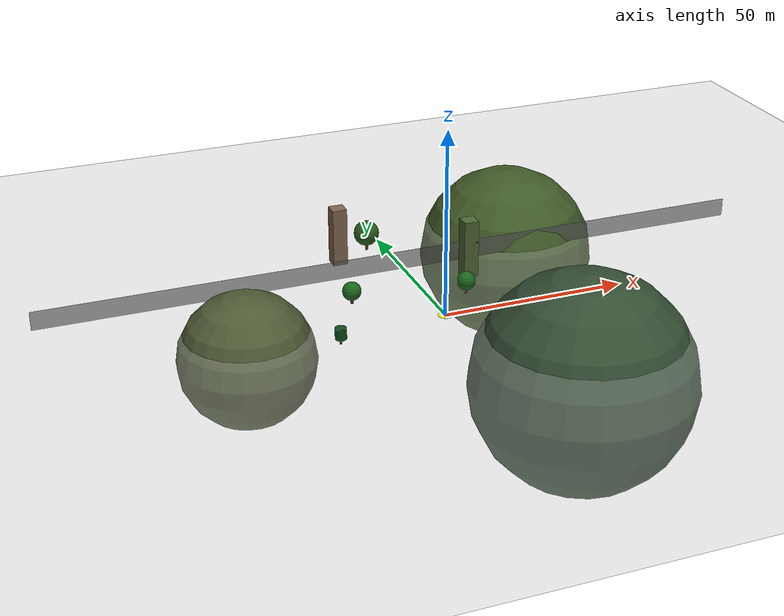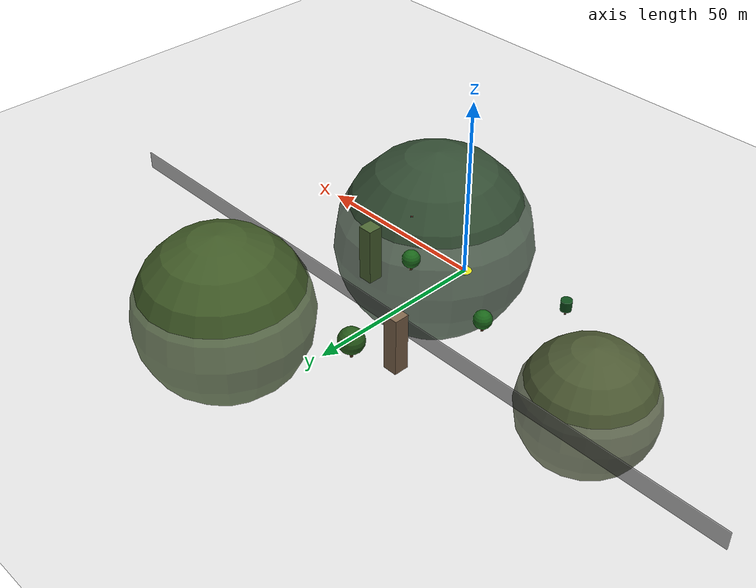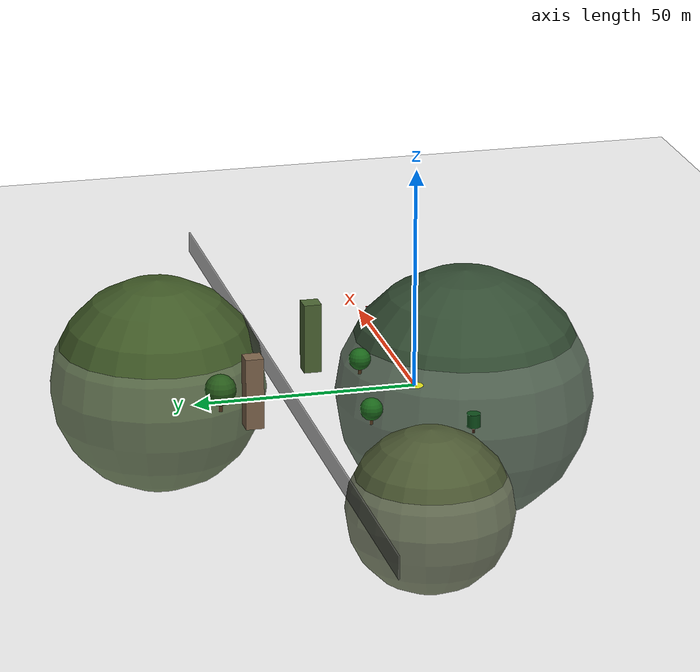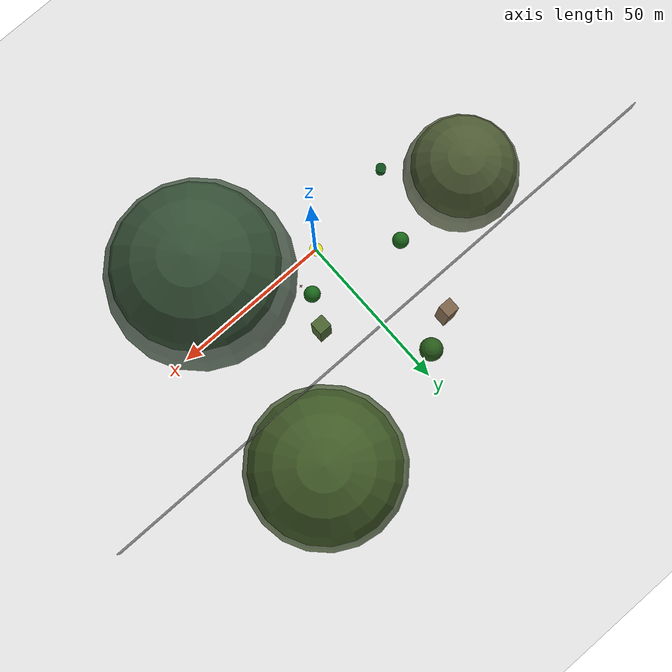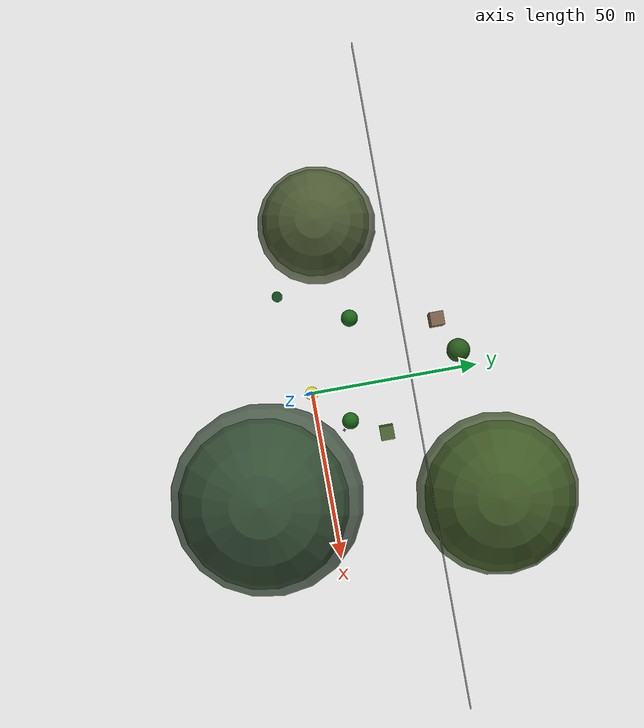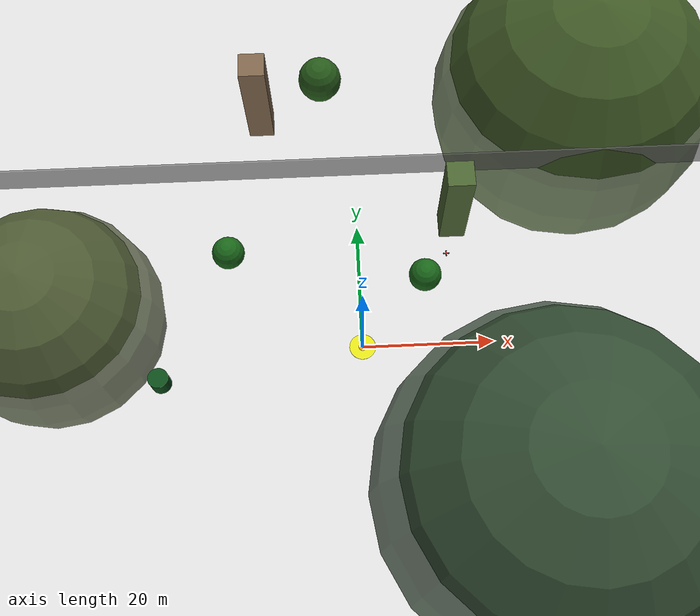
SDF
<sdf version="1.10">
 <world name="px4_drone_world">
  <physics name="1ms" type="ignored">
   <max_step_size>0.001</max_step_size>
   <real_time_factor>1.0</real_time_factor>
  </physics>
  <plugin filename="gz-sim-physics-system" name="gz::sim::systems::Physics"/>
  <plugin filename="gz-sim-user-commands-system" name="gz::sim::systems::UserCommands"/>
  <plugin filename="gz-sim-scene-broadcaster-system" name="gz::sim::systems::SceneBroadcaster"/>
  <plugin filename="gz-sim-imu-system" name="gz::sim::systems::Imu"/>
  <plugin filename="gz-sim-sensors-system" name="gz::sim::systems::Sensors">
   <render_engine>ogre</render_engine>
  </plugin>
  <plugin filename="gz-sim-contact-system" name="gz::sim::systems::Contact"/>
  <atmosphere type="adiabatic"/>
  <magnetic_field>5.5645e-06 2.28758e-05 -4.23884e-05</magnetic_field>
  <light type="directional" name="sun">
   <pose>0 0 10 0 0 0</pose>
   <diffuse>1.0 1.0 1.0 1</diffuse>
   <specular>0.5 0.5 0.5 1</specular>
   <attenuation>
    <range>1000</range>
    <constant>0.9</constant>
    <linear>0.01</linear>
    <quadratic>0.001</quadratic>
   </attenuation>
   <direction>-0.5 0.1 -0.9</direction>
  </light>
  <model name="ground_plane">
   <static>true</static>
   <link name="ground_link">
    <collision name="ground_collision">
     <geometry><plane><normal>0 0 1</normal><size>100 100</size></plane></geometry>
    </collision>
    <visual name="ground_visual">
     <geometry><plane><normal>0 0 1</normal><size>100 100</size></plane></geometry>
     <material><ambient>0.5 0.5 0.5 1</ambient><diffuse>0.7 0.7 0.7 1</diffuse></material>
    </visual>
   </link>
  </model>
  <model name="border_fence">
   <static>true</static>
   <pose>0 30 2.5 0 0 0</pose>
   <link name="link">
    <visual name="fence_vis">
     <geometry><box><size>200 0.3 5</size></box></geometry>
     <material><ambient>0.4 0.4 0.4 0.7</ambient><diffuse>0.4 0.4 0.4 0.7</diffuse></material>
    </visual>
    <collision name="fence_col"><geometry><box><size>200 0.3 5</size></box></geometry></collision>
   </link>
  </model>
  <model name="watchtower_south">
   <static>true</static>
   <pose>15 20 8 0 0 0</pose>
   <link name="link">
    <visual name="vis">
     <geometry><box><size>4 4 16</size></box></geometry>
     <material><ambient>0.3 0.4 0.2 1</ambient><diffuse>0.3 0.4 0.2 1</diffuse></material>
    </visual>
    <collision name="col"><geometry><box><size>4 4 16</size></box></geometry></collision>
   </link>
  </model>
  <model name="watchtower_north">
   <static>true</static>
   <pose>-15 40 8 0 0 0</pose>
   <link name="link">
    <visual name="vis">
     <geometry><box><size>4 4 16</size></box></geometry>
     <material><ambient>0.5 0.4 0.3 1</ambient><diffuse>0.5 0.4 0.3 1</diffuse></material>
    </visual>
    <collision name="col"><geometry><box><size>4 4 16</size></box></geometry></collision>
   </link>
  </model>
  <model name="hill_1">
   <static>true</static>
   <pose>40 50 -10 0 0 0</pose>
   <link name="link">
    <visual name="vis">
     <geometry><sphere><radius>25</radius></sphere></geometry>
     <material><ambient>0.25 0.35 0.15 1</ambient><diffuse>0.25 0.35 0.15 1</diffuse></material>
    </visual>
    <collision name="col"><geometry><sphere><radius>25</radius></sphere></geometry></collision>
   </link>
  </model>
  <model name="hill_2">
   <static>true</static>
   <pose>-50 10 -8 0 0 0</pose>
   <link name="link">
    <visual name="vis">
     <geometry><sphere><radius>18</radius></sphere></geometry>
     <material><ambient>0.3 0.35 0.2 1</ambient><diffuse>0.3 0.35 0.2 1</diffuse></material>
    </visual>
    <collision name="col"><geometry><sphere><radius>18</radius></sphere></geometry></collision>
   </link>
  </model>
  <model name="hill_3">
   <static>true</static>
   <pose>30 -20 -15 0 0 0</pose>
   <link name="link">
    <visual name="vis">
     <geometry><sphere><radius>30</radius></sphere></geometry>
     <material><ambient>0.2 0.3 0.2 1</ambient><diffuse>0.2 0.3 0.2 1</diffuse></material>
    </visual>
    <collision name="col"><geometry><sphere><radius>30</radius></sphere></geometry></collision>
   </link>
  </model>
  <model name="tree_1">
   <static>true</static>
   <pose>10 10 0 0 0 0</pose>
   <link name="trunk">
    <visual name="v">
     <pose>0 0 1 0 0 0</pose>
     <geometry><cylinder><radius>0.4</radius><length>2</length></cylinder></geometry>
     <material><ambient>0.3 0.2 0.1 1</ambient><diffuse>0.3 0.2 0.1 1</diffuse></material>
    </visual>
    <collision name="c">
     <pose>0 0 1 0 0 0</pose>
     <geometry><cylinder><radius>0.4</radius><length>2</length></cylinder></geometry>
    </collision>
   </link>
   <link name="leaves">
    <visual name="v">
     <pose>0 0 3.5 0 0 0</pose>
     <geometry><sphere><radius>2.5</radius></sphere></geometry>
     <material><ambient>0.1 0.4 0.1 1</ambient><diffuse>0.1 0.4 0.1 1</diffuse></material>
    </visual>
    <collision name="c">
     <pose>0 0 3.5 0 0 0</pose>
     <geometry><sphere><radius>2.5</radius></sphere></geometry>
    </collision>
   </link>
  </model>
  <model name="tree_2">
   <static>true</static>
   <pose>-20 15 0 0 0 0</pose>
   <link name="trunk">
    <visual name="v">
     <pose>0 0 1 0 0 0</pose>
     <geometry><cylinder><radius>0.4</radius><length>2</length></cylinder></geometry>
     <material><ambient>0.3 0.2 0.1 1</ambient><diffuse>0.3 0.2 0.1 1</diffuse></material>
    </visual>
    <collision name="c">
     <pose>0 0 1 0 0 0</pose>
     <geometry><cylinder><radius>0.4</radius><length>2</length></cylinder></geometry>
    </collision>
   </link>
   <link name="leaves">
    <visual name="v">
     <pose>0 0 3.5 0 0 0</pose>
     <geometry><sphere><radius>2.5</radius></sphere></geometry>
     <material><ambient>0.1 0.4 0.1 1</ambient><diffuse>0.1 0.4 0.1 1</diffuse></material>
    </visual>
    <collision name="c">
     <pose>0 0 3.5 0 0 0</pose>
     <geometry><sphere><radius>2.5</radius></sphere></geometry>
    </collision>
   </link>
  </model>
  <model name="tree_3">
   <static>true</static>
   <pose>-5 45 0 0 0 0</pose>
   <link name="trunk">
    <visual name="v">
     <pose>0 0 1.5 0 0 0</pose>
     <geometry><cylinder><radius>0.4</radius><length>3</length></cylinder></geometry>
     <material><ambient>0.3 0.2 0.1 1</ambient><diffuse>0.3 0.2 0.1 1</diffuse></material>
    </visual>
    <collision name="c">
     <pose>0 0 1.5 0 0 0</pose>
     <geometry><cylinder><radius>0.4</radius><length>3</length></cylinder></geometry>
    </collision>
   </link>
   <link name="leaves">
    <visual name="v">
     <pose>0 0 5 0 0 0</pose>
     <geometry><sphere><radius>3.5</radius></sphere></geometry>
     <material><ambient>0.15 0.35 0.1 1</ambient><diffuse>0.15 0.35 0.1 1</diffuse></material>
    </visual>
    <collision name="c">
     <pose>0 0 5 0 0 0</pose>
     <geometry><sphere><radius>3.5</radius></sphere></geometry>
    </collision>
   </link>
  </model>
  <model name="tree_4">
   <static>true</static>
   <pose>25 -10 0 0 0 0</pose>
   <link name="trunk">
    <visual name="v">
     <pose>0 0 1 0 0 0</pose>
     <geometry><cylinder><radius>0.4</radius><length>2</length></cylinder></geometry>
     <material><ambient>0.3 0.2 0.1 1</ambient><diffuse>0.3 0.2 0.1 1</diffuse></material>
    </visual>
    <collision name="c">
     <pose>0 0 1 0 0 0</pose>
     <geometry><cylinder><radius>0.4</radius><length>2</length></cylinder></geometry>
    </collision>
   </link>
   <link name="leaves">
    <visual name="v">
     <pose>0 0 3.5 0 0 0</pose>
     <geometry><sphere><radius>2.5</radius></sphere></geometry>
     <material><ambient>0.1 0.4 0.1 1</ambient><diffuse>0.1 0.4 0.1 1</diffuse></material>
    </visual>
    <collision name="c">
     <pose>0 0 3.5 0 0 0</pose>
     <geometry><sphere><radius>2.5</radius></sphere></geometry>
    </collision>
   </link>
  </model>
  <model name="tree_pine_1">
   <static>true</static>
   <pose>-30 -5 0 0 0 0</pose>
   <link name="trunk">
    <visual name="v">
     <pose>0 0 1 0 0 0</pose>
     <geometry><cylinder><radius>0.3</radius><length>2</length></cylinder></geometry>
     <material><ambient>0.2 0.1 0.05 1</ambient><diffuse>0.2 0.1 0.05 1</diffuse></material>
    </visual>
    <collision name="c">
     <pose>0 0 1 0 0 0</pose>
     <geometry><cylinder><radius>0.3</radius><length>2</length></cylinder></geometry>
    </collision>
   </link>
   <link name="leaves1">
    <visual name="v">
     <pose>0 0 3 0 0 0</pose>
     <geometry><cylinder><radius>1.5</radius><length>3</length></cylinder></geometry>
     <material><ambient>0.05 0.3 0.1 1</ambient><diffuse>0.05 0.3 0.1 1</diffuse></material>
    </visual>
    <collision name="c">
     <pose>0 0 3 0 0 0</pose>
     <geometry><cylinder><radius>1.5</radius><length>3</length></cylinder></geometry>
    </collision>
   </link>
  </model>
  <model name="tree_pine_2">
   <static>true</static>
   <pose>35 35 0 0 0 0</pose>
   <link name="trunk">
    <visual name="v">
     <pose>0 0 1 0 0 0</pose>
     <geometry><cylinder><radius>0.3</radius><length>2</length></cylinder></geometry>
     <material><ambient>0.2 0.1 0.05 1</ambient><diffuse>0.2 0.1 0.05 1</diffuse></material>
    </visual>
    <collision name="c">
     <pose>0 0 1 0 0 0</pose>
     <geometry><cylinder><radius>0.3</radius><length>2</length></cylinder></geometry>
    </collision>
   </link>
   <link name="leaves1">
    <visual name="v">
     <pose>0 0 3 0 0 0</pose>
     <geometry><cylinder><radius>1.5</radius><length>3</length></cylinder></geometry>
     <material><ambient>0.05 0.3 0.1 1</ambient><diffuse>0.05 0.3 0.1 1</diffuse></material>
    </visual>
    <collision name="c">
     <pose>0 0 3 0 0 0</pose>
     <geometry><cylinder><radius>1.5</radius><length>3</length></cylinder></geometry>
    </collision>
   </link>
  </model>
  <model name="landing_pad">
   <static>true</static>
   <pose>0 0 0.01 0 0 0</pose>
   <link name="link">
    <visual name="pad_outer">
     <geometry><cylinder><radius>2.0</radius><length>0.02</length></cylinder></geometry>
     <material><ambient>0.90 0.90 0.10 1</ambient><diffuse>0.90 0.90 0.10 1</diffuse></material>
    </visual>
    <visual name="pad_inner">
     <geometry><cylinder><radius>0.6</radius><length>0.025</length></cylinder></geometry>
     <material><ambient>1.0 0.60 0.0 1</ambient><diffuse>1.0 0.60 0.0 1</diffuse></material>
    </visual>
   </link>
  </model>
  <model name="north_arrow">
   <static>true</static>
   <pose>0 5 0.01 0 0 0</pose>
   <link name="link">
    <visual name="visual">
     <geometry><box><size>0.3 3 0.04</size></box></geometry>
     <material><ambient>0.9 0.9 0.9 1</ambient><diffuse>0.9 0.9 0.9 1</diffuse></material>
    </visual>
   </link>
  </model>
  <model name="target_drone">
   <static>true</static>
   <pose>12 8 15 0 0 0.785</pose>
   <link name="body">
    <visual name="body_vis">
     <geometry><box><size>0.28 0.28 0.09</size></box></geometry>
     <material><ambient>0.9 0.1 0.1 1</ambient><diffuse>0.9 0.1 0.1 1</diffuse></material>
    </visual>
    <visual name="arm_0">
     <pose>0.17 -0.17 0 0 0 -0.785</pose>
     <geometry><box><size>0.32 0.035 0.035</size></box></geometry>
     <material><ambient>0.25 0.25 0.25 1</ambient><diffuse>0.25 0.25 0.25 1</diffuse></material>
    </visual>
    <visual name="arm_1">
     <pose>0.17 0.17 0 0 0 0.785</pose>
     <geometry><box><size>0.32 0.035 0.035</size></box></geometry>
     <material><ambient>0.25 0.25 0.25 1</ambient><diffuse>0.25 0.25 0.25 1</diffuse></material>
    </visual>
    <visual name="arm_2">
     <pose>-0.17 -0.17 0 0 0 0.785</pose>
     <geometry><box><size>0.32 0.035 0.035</size></box></geometry>
     <material><ambient>0.25 0.25 0.25 1</ambient><diffuse>0.25 0.25 0.25 1</diffuse></material>
    </visual>
    <visual name="arm_3">
     <pose>-0.17 0.17 0 0 0 -0.785</pose>
     <geometry><box><size>0.32 0.035 0.035</size></box></geometry>
     <material><ambient>0.25 0.25 0.25 1</ambient><diffuse>0.25 0.25 0.25 1</diffuse></material>
    </visual>
    <visual name="rotor_0">
     <pose>0.24 -0.24 0.02 0 0 0</pose>
     <geometry><cylinder><radius>0.11</radius><length>0.012</length></cylinder></geometry>
     <material><ambient>0.15 0.15 0.15 1</ambient><diffuse>0.15 0.15 0.15 1</diffuse></material>
    </visual>
    <visual name="rotor_1">
     <pose>0.24 0.24 0.02 0 0 0</pose>
     <geometry><cylinder><radius>0.11</radius><length>0.012</length></cylinder></geometry>
     <material><ambient>0.15 0.15 0.15 1</ambient><diffuse>0.15 0.15 0.15 1</diffuse></material>
    </visual>
    <visual name="rotor_2">
     <pose>-0.24 -0.24 0.02 0 0 0</pose>
     <geometry><cylinder><radius>0.11</radius><length>0.012</length></cylinder></geometry>
     <material><ambient>0.15 0.15 0.15 1</ambient><diffuse>0.15 0.15 0.15 1</diffuse></material>
    </visual>
    <visual name="rotor_3">
     <pose>-0.24 0.24 0.02 0 0 0</pose>
     <geometry><cylinder><radius>0.11</radius><length>0.012</length></cylinder></geometry>
     <material><ambient>0.15 0.15 0.15 1</ambient><diffuse>0.15 0.15 0.15 1</diffuse></material>
    </visual>
   </link>
  </model>
 </world>
</sdf>
